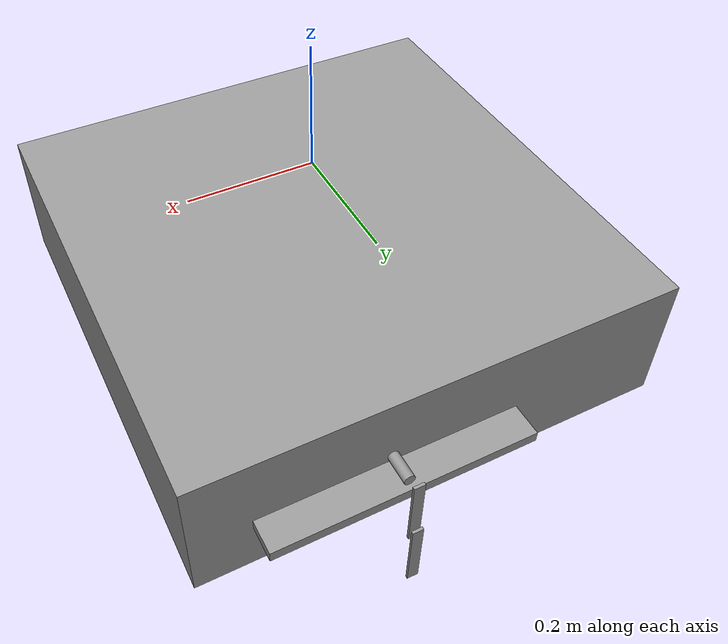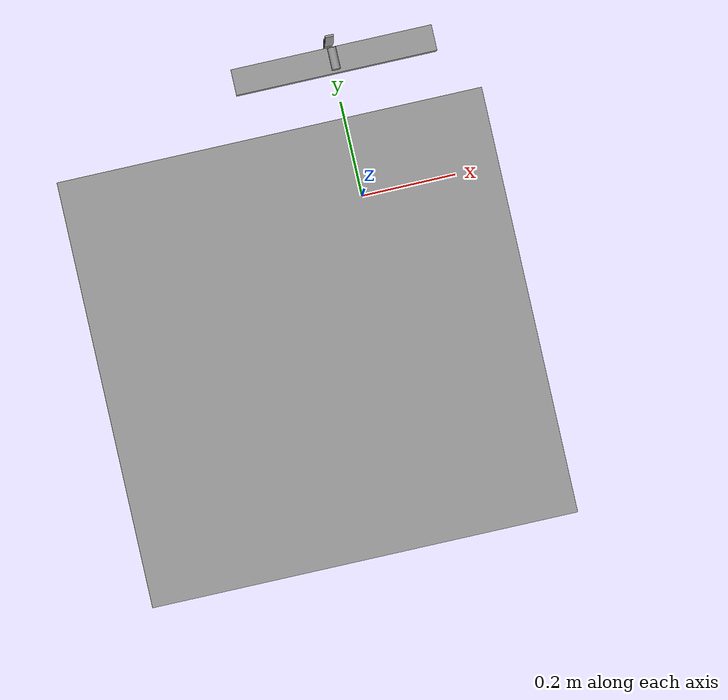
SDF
<?xml version='1.0'?>
<sdf version='1.7'>
  <model name='inv_double_pendulum'>
    <link name='link_0'>
      <inertial>
        <mass>4.43868</mass>
        <inertia>
          <ixx>0.00147956</ixx>
          <ixy>0</ixy>
          <ixz>0</ixz>
          <iyy>0.0818567</iyy>
          <iyz>0</iyz>
          <izz>0.0830403</izz>
        </inertia>
        <pose>0 0 0 0 -0 0</pose>
      </inertial>
      <pose>0.018748 0.339039 -0.371875 0 -0 0</pose>
      <gravity>1</gravity>
      <self_collide>0</self_collide>
      <kinematic>0</kinematic>
      <enable_wind>0</enable_wind>
      <visual name='visual'>
        <pose>0 0 0 0 -0 0</pose>
        <geometry>
          <box>
            <size>0.47 0.06 0.02</size>
          </box>
        </geometry>
        <material>
          <lighting>1</lighting>
          <script>
            <uri>file://media/materials/scripts/gazebo.material</uri>
            <name>Gazebo/Grey</name>
          </script>
          <shader type='pixel'>
            <normal_map>__default__</normal_map>
          </shader>
          <ambient>0.3 0.3 0.3 1</ambient>
          <diffuse>0.7 0.7 0.7 1</diffuse>
          <specular>0.01 0.01 0.01 1</specular>
          <emissive>0 0 0 1</emissive>
        </material>
        <transparency>0</transparency>
        <cast_shadows>1</cast_shadows>
      </visual>
      <collision name='collision'>
        <laser_retro>0</laser_retro>
        <max_contacts>10</max_contacts>
        <pose>0 0 0 0 -0 0</pose>
        <geometry>
          <box>
            <size>0.47 0.06 0.02</size>
          </box>
        </geometry>
        <surface>
          <friction>
            <ode>
              <mu>1</mu>
              <mu2>1</mu2>
              <fdir1>0 0 0</fdir1>
              <slip1>0</slip1>
              <slip2>0</slip2>
            </ode>
            <torsional>
              <coefficient>1</coefficient>
              <patch_radius>0</patch_radius>
              <surface_radius>0</surface_radius>
              <use_patch_radius>1</use_patch_radius>
              <ode>
                <slip>0</slip>
              </ode>
            </torsional>
          </friction>
          <bounce>
            <restitution_coefficient>0</restitution_coefficient>
            <threshold>1e+06</threshold>
          </bounce>
          <contact>
            <collide_without_contact>0</collide_without_contact>
            <collide_without_contact_bitmask>1</collide_without_contact_bitmask>
            <collide_bitmask>1</collide_bitmask>
            <ode>
              <soft_cfm>0</soft_cfm>
              <soft_erp>0.2</soft_erp>
              <kp>1e+13</kp>
              <kd>1</kd>
              <max_vel>0.01</max_vel>
              <min_depth>0</min_depth>
            </ode>
            <bullet>
              <split_impulse>1</split_impulse>
              <split_impulse_penetration_threshold>-0.01</split_impulse_penetration_threshold>
              <soft_cfm>0</soft_cfm>
              <soft_erp>0.2</soft_erp>
              <kp>1e+13</kp>
              <kd>1</kd>
            </bullet>
          </contact>
        </surface>
      </collision>
    </link>
    <link name='arm_0'>
      <inertial>
        <mass>0.0378</mass>
        <inertia>
          <ixx>6.182e-05</ixx>
          <ixy>0</ixy>
          <ixz>0</ixz>
          <iyy>6.3e-05</iyy>
          <iyz>0</iyz>
          <izz>1.34e-06</izz>
        </inertia>
        <pose>0 0 0 0 -0 0</pose>
      </inertial>
      <pose>0.018748 0.389039 -0.391874 0 -0 0</pose>
      <gravity>1</gravity>
      <self_collide>0</self_collide>
      <kinematic>0</kinematic>
      <enable_wind>0</enable_wind>
      <visual name='visual'>
        <pose>0 0 0 0 -0 0</pose>
        <geometry>
          <box>
            <size>0.02 0.005 0.14</size>
          </box>
        </geometry>
        <material>
          <lighting>1</lighting>
          <script>
            <uri>file://media/materials/scripts/gazebo.material</uri>
            <name>Gazebo/Grey</name>
          </script>
          <shader type='pixel'>
            <normal_map>__default__</normal_map>
          </shader>
          <ambient>0.3 0.3 0.3 1</ambient>
          <diffuse>0.7 0.7 0.7 1</diffuse>
          <specular>0.01 0.01 0.01 1</specular>
          <emissive>0 0 0 1</emissive>
        </material>
        <transparency>0</transparency>
        <cast_shadows>1</cast_shadows>
      </visual>
      <collision name='collision'>
        <laser_retro>0</laser_retro>
        <max_contacts>10</max_contacts>
        <pose>0 0 0 0 -0 0</pose>
        <geometry>
          <box>
            <size>0.02 0.005 0.14</size>
          </box>
        </geometry>
        <surface>
          <friction>
            <ode>
              <mu>1</mu>
              <mu2>1</mu2>
              <fdir1>0 0 0</fdir1>
              <slip1>0</slip1>
              <slip2>0</slip2>
            </ode>
            <torsional>
              <coefficient>1</coefficient>
              <patch_radius>0</patch_radius>
              <surface_radius>0</surface_radius>
              <use_patch_radius>1</use_patch_radius>
              <ode>
                <slip>0</slip>
              </ode>
            </torsional>
          </friction>
          <bounce>
            <restitution_coefficient>0</restitution_coefficient>
            <threshold>1e+06</threshold>
          </bounce>
          <contact>
            <collide_without_contact>0</collide_without_contact>
            <collide_without_contact_bitmask>1</collide_without_contact_bitmask>
            <collide_bitmask>1</collide_bitmask>
            <ode>
              <soft_cfm>0</soft_cfm>
              <soft_erp>0.2</soft_erp>
              <kp>1e+13</kp>
              <kd>1</kd>
              <max_vel>0.01</max_vel>
              <min_depth>0</min_depth>
            </ode>
            <bullet>
              <split_impulse>1</split_impulse>
              <split_impulse_penetration_threshold>-0.01</split_impulse_penetration_threshold>
              <soft_cfm>0</soft_cfm>
              <soft_erp>0.2</soft_erp>
              <kp>1e+13</kp>
              <kd>1</kd>
            </bullet>
          </contact>
        </surface>
      </collision>
    </link>
    <link name='arm_1'>
      <inertial>
        <mass>0.0378</mass>
        <inertia>
          <ixx>6.182e-05</ixx>
          <ixy>0</ixy>
          <ixz>0</ixz>
          <iyy>6.3e-05</iyy>
          <iyz>0</iyz>
          <izz>1.34e-06</izz>
        </inertia>
        <pose>0 0 0 0 -0 0</pose>
      </inertial>
      <pose>0.018748 0.399039 -0.501874 0 -0 0</pose>
      <gravity>1</gravity>
      <self_collide>0</self_collide>
      <kinematic>0</kinematic>
      <enable_wind>0</enable_wind>
      <visual name='visual'>
        <pose>0 0 0 0 -0 0</pose>
        <geometry>
          <box>
            <size>0.02 0.005 0.14</size>
          </box>
        </geometry>
        <material>
          <lighting>1</lighting>
          <script>
            <uri>file://media/materials/scripts/gazebo.material</uri>
            <name>Gazebo/Grey</name>
          </script>
          <shader type='pixel'>
            <normal_map>__default__</normal_map>
          </shader>
          <ambient>0.3 0.3 0.3 1</ambient>
          <diffuse>0.7 0.7 0.7 1</diffuse>
          <specular>0.01 0.01 0.01 1</specular>
          <emissive>0 0 0 1</emissive>
        </material>
        <transparency>0</transparency>
        <cast_shadows>1</cast_shadows>
      </visual>
      <collision name='collision'>
        <laser_retro>0</laser_retro>
        <max_contacts>10</max_contacts>
        <pose>0 0 0 0 -0 0</pose>
        <geometry>
          <box>
            <size>0.02 0.005 0.14</size>
          </box>
        </geometry>
        <surface>
          <friction>
            <ode>
              <mu>1</mu>
              <mu2>1</mu2>
              <fdir1>0 0 0</fdir1>
              <slip1>0</slip1>
              <slip2>0</slip2>
            </ode>
            <torsional>
              <coefficient>1</coefficient>
              <patch_radius>0</patch_radius>
              <surface_radius>0</surface_radius>
              <use_patch_radius>1</use_patch_radius>
              <ode>
                <slip>0</slip>
              </ode>
            </torsional>
          </friction>
          <bounce>
            <restitution_coefficient>0</restitution_coefficient>
            <threshold>1e+06</threshold>
          </bounce>
          <contact>
            <collide_without_contact>0</collide_without_contact>
            <collide_without_contact_bitmask>1</collide_without_contact_bitmask>
            <collide_bitmask>1</collide_bitmask>
            <ode>
              <soft_cfm>0</soft_cfm>
              <soft_erp>0.2</soft_erp>
              <kp>1e+13</kp>
              <kd>1</kd>
              <max_vel>0.01</max_vel>
              <min_depth>0</min_depth>
            </ode>
            <bullet>
              <split_impulse>1</split_impulse>
              <split_impulse_penetration_threshold>-0.01</split_impulse_penetration_threshold>
              <soft_cfm>0</soft_cfm>
              <soft_erp>0.2</soft_erp>
              <kp>1e+13</kp>
              <kd>1</kd>
            </bullet>
          </contact>
        </surface>
      </collision>
    </link>
    <link name='link_0_0'>
      <inertial>
        <mass>2279.14</mass>
        <inertia>
          <ixx>205.857</ixx>
          <ixy>0</ixy>
          <ixz>0</ixz>
          <iyy>205.857</iyy>
          <iyz>0</iyz>
          <izz>379.856</izz>
        </inertia>
        <pose>0 0 0 0 -0 0</pose>
      </inertial>
      <pose>-0.163102 -0.293286 -0.529267 0 -0 0</pose>
      <self_collide>0</self_collide>
      <enable_wind>0</enable_wind>
      <kinematic>0</kinematic>
      <gravity>1</gravity>
      <visual name='visual'>
        <pose>0 0 0 0 -0 0</pose>
        <geometry>
          <box>
            <size>1 1 0.289598</size>
          </box>
        </geometry>
        <material>
          <lighting>1</lighting>
          <script>
            <uri>file://media/materials/scripts/gazebo.material</uri>
            <name>Gazebo/Grey</name>
          </script>
          <shader type='pixel'>
            <normal_map>__default__</normal_map>
          </shader>
          <emissive>0 0 0 1</emissive>
        </material>
        <transparency>0</transparency>
        <cast_shadows>1</cast_shadows>
      </visual>
      <collision name='collision'>
        <laser_retro>0</laser_retro>
        <max_contacts>10</max_contacts>
        <pose>0 0 0 0 -0 0</pose>
        <geometry>
          <box>
            <size>1 1 0.289598</size>
          </box>
        </geometry>
        <surface>
          <friction>
            <ode>
              <mu>1</mu>
              <mu2>1</mu2>
              <fdir1>0 0 0</fdir1>
              <slip1>0</slip1>
              <slip2>0</slip2>
            </ode>
            <torsional>
              <coefficient>1</coefficient>
              <patch_radius>0</patch_radius>
              <surface_radius>0</surface_radius>
              <use_patch_radius>1</use_patch_radius>
              <ode>
                <slip>0</slip>
              </ode>
            </torsional>
          </friction>
          <bounce>
            <restitution_coefficient>0</restitution_coefficient>
            <threshold>1e+06</threshold>
          </bounce>
          <contact>
            <collide_without_contact>0</collide_without_contact>
            <collide_without_contact_bitmask>1</collide_without_contact_bitmask>
            <collide_bitmask>1</collide_bitmask>
            <ode>
              <soft_cfm>0</soft_cfm>
              <soft_erp>0.2</soft_erp>
              <kp>1e+13</kp>
              <kd>1</kd>
              <max_vel>0.01</max_vel>
              <min_depth>0</min_depth>
            </ode>
            <bullet>
              <split_impulse>1</split_impulse>
              <split_impulse_penetration_threshold>-0.01</split_impulse_penetration_threshold>
              <soft_cfm>0</soft_cfm>
              <soft_erp>0.2</soft_erp>
              <kp>1e+13</kp>
              <kd>1</kd>
            </bullet>
          </contact>
        </surface>
      </collision>
    </link>
    <link name='link_1'>
      <inertial>
        <mass>1</mass>
        <inertia>
          <ixx>0.145833</ixx>
          <ixy>0</ixy>
          <ixz>0</ixz>
          <iyy>0.145833</iyy>
          <iyz>0</iyz>
          <izz>0.125</izz>
        </inertia>
        <pose>0 0 0 0 -0 0</pose>
      </inertial>
      <pose>0.018748 0.339039 -0.341875 -1.57079 0 0</pose>
      <gravity>1</gravity>
      <self_collide>0</self_collide>
      <kinematic>0</kinematic>
      <enable_wind>0</enable_wind>
      <visual name='visual'>
        <pose>0 0 0 0 -0 0</pose>
        <geometry>
          <cylinder>
            <radius>0.01</radius>
            <length>0.05</length>
          </cylinder>
        </geometry>
        <material>
          <lighting>1</lighting>
          <script>
            <uri>file://media/materials/scripts/gazebo.material</uri>
            <name>Gazebo/Grey</name>
          </script>
          <shader type='pixel'>
            <normal_map>__default__</normal_map>
          </shader>
          <ambient>0.3 0.3 0.3 1</ambient>
          <diffuse>0.7 0.7 0.7 1</diffuse>
          <specular>0.01 0.01 0.01 1</specular>
          <emissive>0 0 0 1</emissive>
        </material>
        <transparency>0</transparency>
        <cast_shadows>1</cast_shadows>
      </visual>
      <collision name='collision'>
        <laser_retro>0</laser_retro>
        <max_contacts>10</max_contacts>
        <pose>0 0 0 0 -0 0</pose>
        <geometry>
          <cylinder>
            <radius>0.01</radius>
            <length>0.05</length>
          </cylinder>
        </geometry>
        <surface>
          <friction>
            <ode>
              <mu>1</mu>
              <mu2>1</mu2>
              <fdir1>0 0 0</fdir1>
              <slip1>0</slip1>
              <slip2>0</slip2>
            </ode>
            <torsional>
              <coefficient>1</coefficient>
              <patch_radius>0</patch_radius>
              <surface_radius>0</surface_radius>
              <use_patch_radius>1</use_patch_radius>
              <ode>
                <slip>0</slip>
              </ode>
            </torsional>
          </friction>
          <bounce>
            <restitution_coefficient>0</restitution_coefficient>
            <threshold>1e+06</threshold>
          </bounce>
          <contact>
            <collide_without_contact>0</collide_without_contact>
            <collide_without_contact_bitmask>1</collide_without_contact_bitmask>
            <collide_bitmask>1</collide_bitmask>
            <ode>
              <soft_cfm>0</soft_cfm>
              <soft_erp>0.2</soft_erp>
              <kp>1e+13</kp>
              <kd>1</kd>
              <max_vel>0.01</max_vel>
              <min_depth>0</min_depth>
            </ode>
            <bullet>
              <split_impulse>1</split_impulse>
              <split_impulse_penetration_threshold>-0.01</split_impulse_penetration_threshold>
              <soft_cfm>0</soft_cfm>
              <soft_erp>0.2</soft_erp>
              <kp>1e+13</kp>
              <kd>1</kd>
            </bullet>
          </contact>
        </surface>
      </collision>
    </link>
    <joint name='arm_0_JOINT_0' type='revolute'>
      <parent>arm_0</parent>
      <child>arm_1</child>
      <pose>0 0 0.055 0 -0 0</pose>
      <axis>
        <xyz>0 1 0</xyz>
        <limit>
          <lower>-1.79769e+308</lower>
          <upper>1.79769e+308</upper>
          <effort>-1</effort>
          <velocity>-1</velocity>
        </limit>
        <dynamics>
          <spring_reference>0</spring_reference>
          <spring_stiffness>0</spring_stiffness>
          <damping>0</damping>
          <friction>0</friction>
        </dynamics>
      </axis>
      <physics>
        <ode>
          <limit>
            <cfm>0</cfm>
            <erp>0.2</erp>
          </limit>
          <suspension>
            <cfm>0</cfm>
            <erp>0.2</erp>
          </suspension>
        </ode>
      </physics>
    </joint>
    <joint name='link_0_0_JOINT_1' type='fixed'>
      <parent>link_0_0</parent>
      <child>link_0</child>
      <pose>0 0 0 0 -0 0</pose>
      <physics>
        <ode>
          <limit>
            <cfm>0</cfm>
            <erp>0.2</erp>
          </limit>
          <suspension>
            <cfm>0</cfm>
            <erp>0.2</erp>
          </suspension>
        </ode>
      </physics>
    </joint>
    <joint name='revolute_joint_0' type='revolute'>
      <parent>link_1</parent>
      <child>arm_0</child>
      <pose>0 0 0.055 0 -0 0</pose>
      <axis>
        <xyz>0 1 0</xyz>
        <limit>
          <lower>-1.79769e+308</lower>
          <upper>1.79769e+308</upper>
          <effort>-1</effort>
          <velocity>-1</velocity>
        </limit>
        <dynamics>
          <spring_reference>0</spring_reference>
          <spring_stiffness>0</spring_stiffness>
          <damping>0</damping>
          <friction>0</friction>
        </dynamics>
      </axis>
      <physics>
        <ode>
          <limit>
            <cfm>0</cfm>
            <erp>0.2</erp>
          </limit>
          <suspension>
            <cfm>0</cfm>
            <erp>0.2</erp>
          </suspension>
        </ode>
      </physics>
    </joint>
    <joint name='slide_joint' type='prismatic'>
      <parent>link_0</parent>
      <child>link_1</child>
      <pose>0 0 0 0 -0 0</pose>
      <axis>
        <xyz>1 0 0</xyz>
        <limit>
          <lower>-0.2</lower>
          <upper>0.2</upper>
          <effort>-1</effort>
          <velocity>-1</velocity>
        </limit>
        <dynamics>
          <spring_reference>0</spring_reference>
          <spring_stiffness>0</spring_stiffness>
          <damping>0</damping>
          <friction>0</friction>
        </dynamics>
      </axis>
      <physics>
        <ode>
          <limit>
            <cfm>0</cfm>
            <erp>0.2</erp>
          </limit>
          <suspension>
            <cfm>0</cfm>
            <erp>0.2</erp>
          </suspension>
        </ode>
      </physics>
    </joint>
    <static>0</static>
    <allow_auto_disable>1</allow_auto_disable>
  </model>
</sdf>
